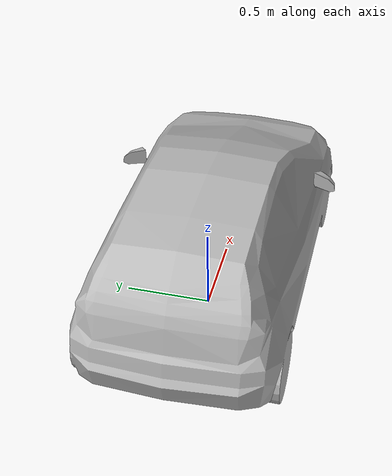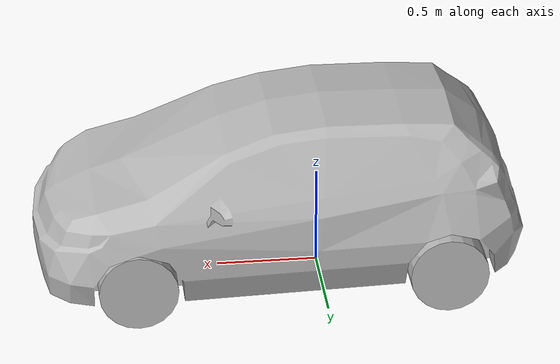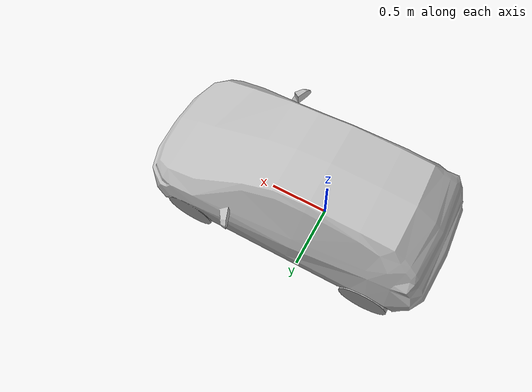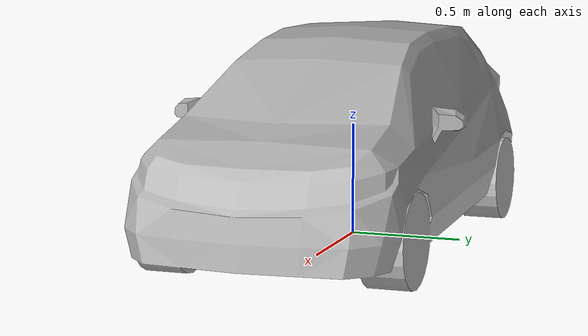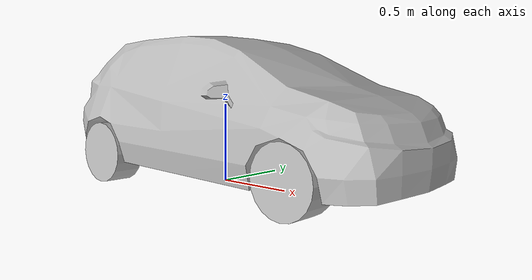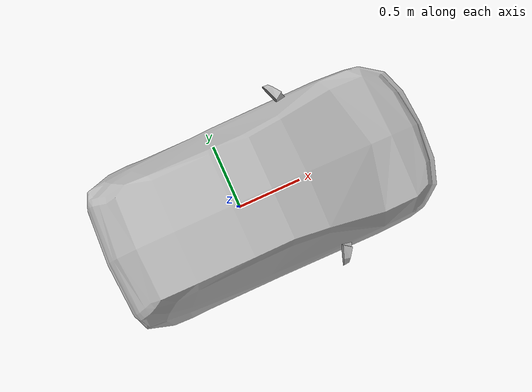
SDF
<?xml version="1.0" ?>
<sdf version="1.6">
  <model name="hatchback_red">
    <static>true</static>
    <link name="link">
      <collision name="collision">
        <pose>0 0 0 0 0 1.57079632679</pose>
        <geometry>
          <mesh>
            <scale>0.0154 0.0154 0.154</scale>
            <uri>model://hatchback_red/meshes/hatchback.obj</uri>
          </mesh>
        </geometry>
      </collision>
      <visual name="visual">
        <pose>0 0 0 0 0 1.57079632679</pose>
        <geometry>
          <mesh>
            <scale>0.0154 0.0154 0.0154</scale>
            <uri>model://hatchback_red/meshes/hatchback.obj</uri>
          </mesh>
        </geometry>
      </visual>
    </link>
  </model>
</sdf>
